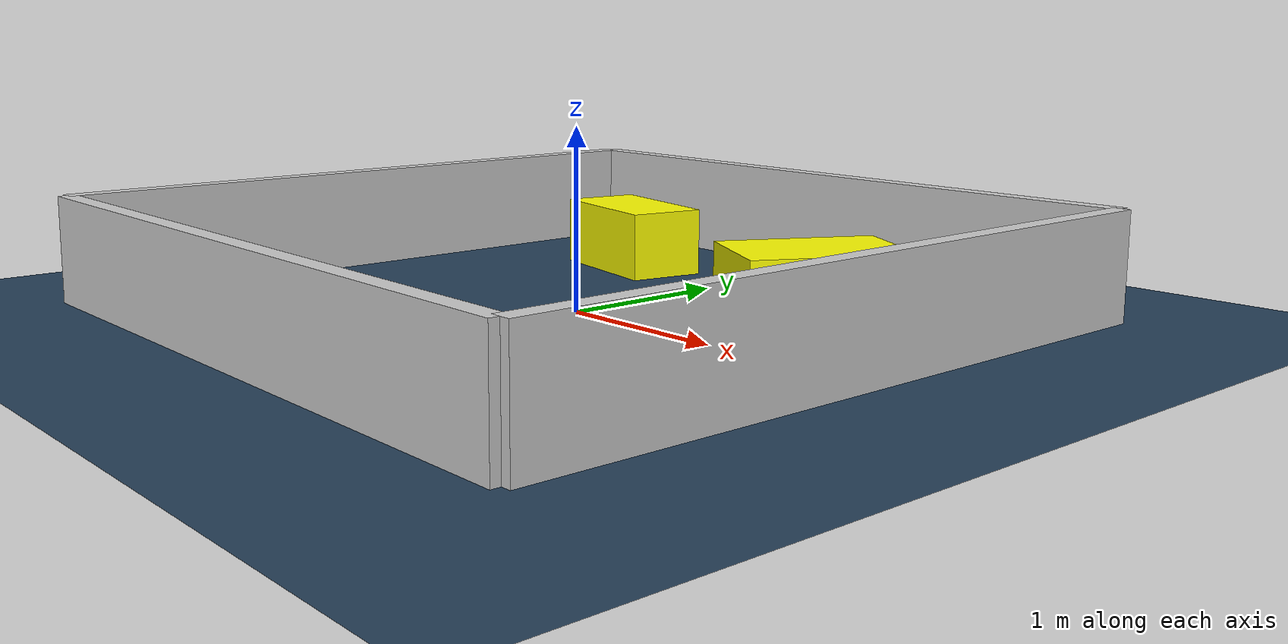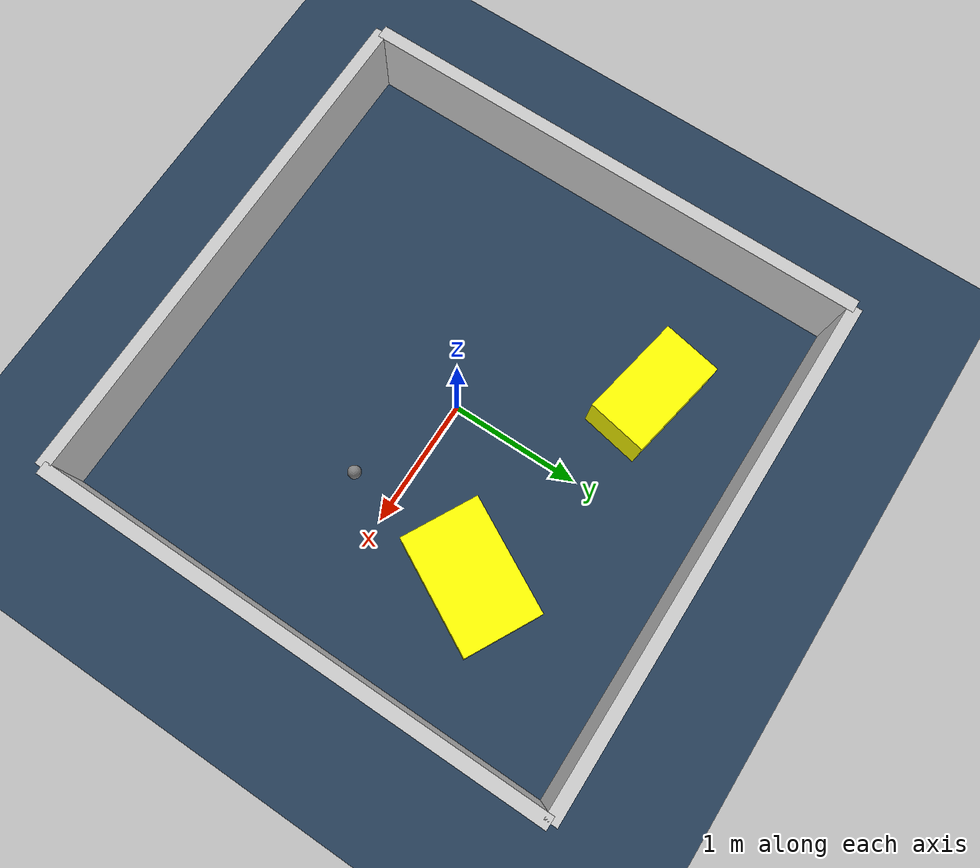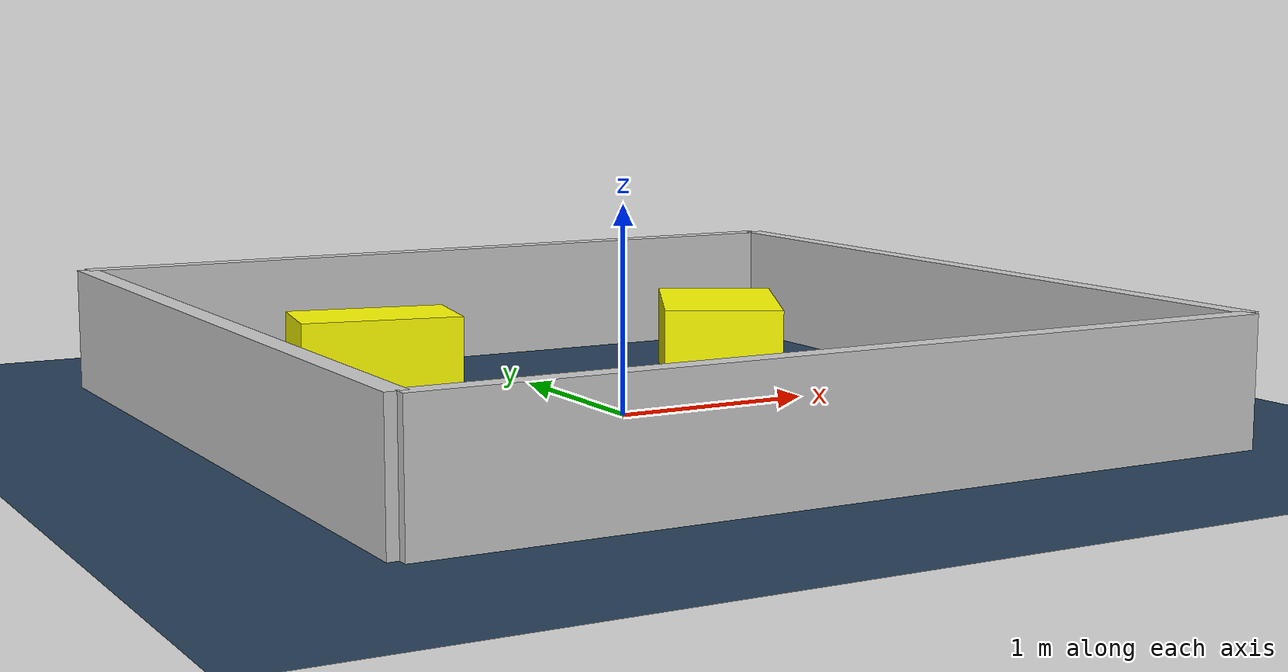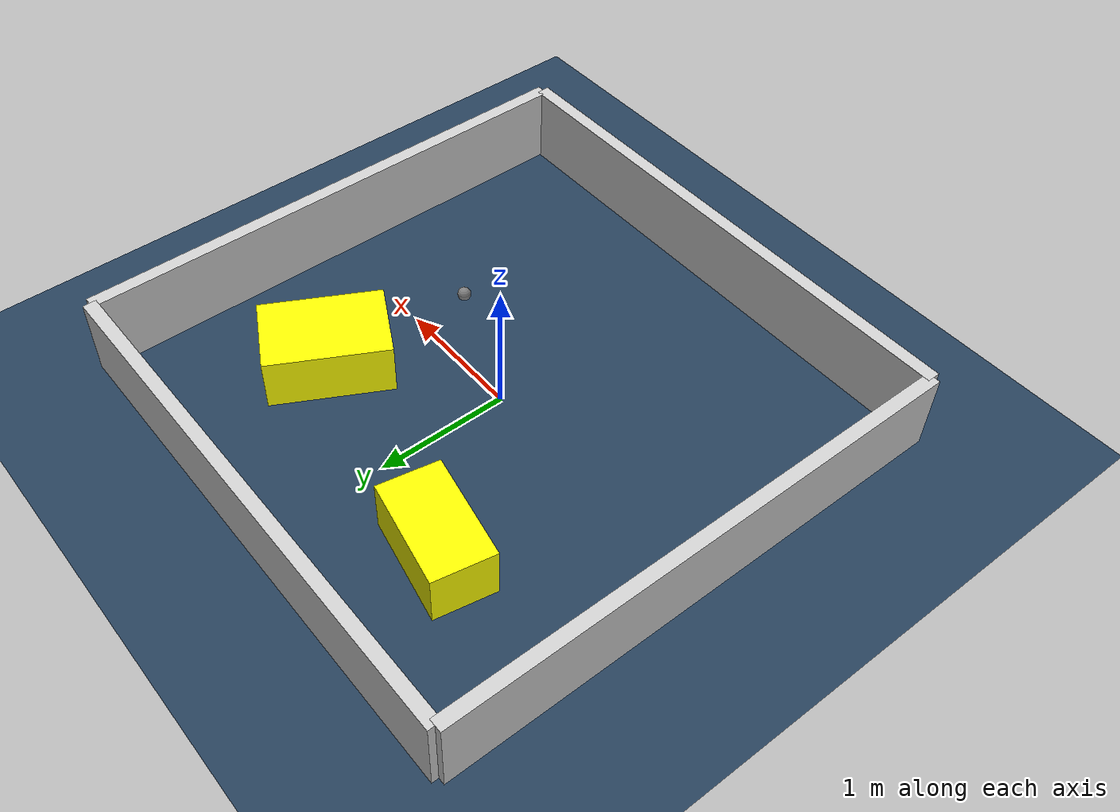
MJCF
<?xml version="1.0" ?>
<mujoco model="generated_environment">
  <option timestep="0.01" integrator="RK4" cone="elliptic"/>
  <default>
    <geom density="1"/>
  </default>
  <asset>
    <texture builtin="gradient" height="3072" rgb1="0.3 0.5 0.7" rgb2="0 0 0" type="skybox" width="512"/>
    <texture builtin="checker" height="300" mark="edge" markrgb="0.8 0.8 0.8" name="groundplane" rgb1="0.2 0.3 0.4" rgb2="0.1 0.2 0.3" type="2d" width="300"/>
    <material name="groundplane" reflectance="0.2" texrepeat="5 5" texture="groundplane" texuniform="true"/>
    <material name="robot" rgba="0.0 1.0 0.0 1"/>
  </asset>
  <worldbody>
    <light dir="0 0 -1" directional="true" pos="0 0 1.5"/>
    <geom condim="4" friction="1.0 0.005 0.001" material="groundplane" name="floor" size="0 0 0.05" type="plane"/>
    <body name="walls">
      <geom name="wall_1" condim="4" pos="-2.0 0.0 0.3" rgba="0.800000011920929 0.800000011920929 0.800000011920929 1.0" size="0.05 2.0 0.3" type="box"/>
      <geom name="wall_2" condim="4" pos="2.0 0.0 0.3" rgba="0.800000011920929 0.800000011920929 0.800000011920929 1.0" size="0.05 2.0 0.3" type="box"/>
      <geom name="wall_3" condim="4" pos="0.0 -2.0 0.3" rgba="0.800000011920929 0.800000011920929 0.800000011920929 1.0" size="2.0 0.05 0.3" type="box"/>
      <geom name="wall_4" condim="4" pos="0.0 2.0 0.3" rgba="0.800000011920929 0.800000011920929 0.800000011920929 1.0" size="2.0 0.05 0.3" type="box"/>
    </body>
    <body name="robot">
      <joint name="joint_x" type="slide" pos="0 0 0" axis="1 0 0"/>
      <joint name="joint_y" type="slide" pos="0 0 0" axis="0 1 0"/>
      <geom name="robot" type="sphere" pos="0.8338421542235812 -0.31733267030788337 0.2" size="0.05" mass="5." friction="1.0 0.005 0.0001" condim="4"/>
      <site name="sensor_ball"/>
    </body>
    <body name="obstacle_1_movable">
      <geom name="obstacle_1_movable" condim="4" pos="-0.8016552734939079 1.1304704927707796 0.2" euler="0 0 349.29240627507806" friction="1.0 0.005 0.001" rgba="1 1 0 1" size="0.4044210712200623 0.2312815913833517 0.2" type="box" mass="0.1"/>
      <joint type="free"/>
    </body>
    <body name="obstacle_2_movable">
      <geom name="obstacle_2_movable" condim="4" pos="1.0009560296611446 0.7697657540956424 0.2" euler="0 0 62.056241190358115" friction="1.0 0.005 0.001" rgba="1 1 0 1" size="0.4503154061992349 0.3002651862461377 0.2" type="box" mass="0.1"/>
      <joint type="free"/>
    </body>
  </worldbody>
  <actuator>
    <motor name="actuator_x" joint="joint_x" gear="1" ctrlrange="-1 1"/>
    <motor name="actuator_y" joint="joint_y" gear="1" ctrlrange="-1 1"/>
  </actuator>
</mujoco>
